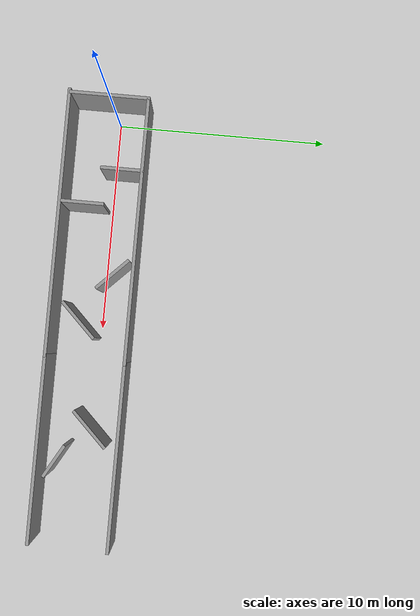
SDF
<sdf version="1.7">
 <world name="default">
  <light name="sun" type="directional">
   <pose>0 0 10 0 -0 0</pose>
   <diffuse>0.8 0.8 0.8 1</diffuse>
   <specular>0.2 0.2 0.2 1</specular>
   <attenuation>
    <range>1000</range>
    <constant>0.9</constant>
    <linear>0.01</linear>
    <quadratic>0.001</quadratic>
   </attenuation>
   <direction>-0.5 0.1 -0.9</direction>
   <spot><inner_angle>0</inner_angle><outer_angle>0</outer_angle><falloff>0</falloff></spot>
  </light>
  <model name="ground_plane">
   <static>1</static>
   <link name="link">
    <collision name="collision">
     <geometry><plane><normal>0 0 1</normal><size>100 100</size></plane></geometry>
     <surface>
      <contact><collide_bitmask>65535</collide_bitmask></contact>
      <friction><ode><mu>100</mu><mu2>50</mu2></ode></friction>
     </surface>
    </collision>
    <visual name="visual">
     <cast_shadows>0</cast_shadows>
     <geometry><plane><normal>0 0 1</normal><size>100 100</size></plane></geometry>
     <material>
      <script><uri>file://media/materials/scripts/gazebo.material</uri><name>Gazebo/Grey</name></script>
     </material>
    </visual>
   </link>
  </model>
  <gravity>0 0 -9.8</gravity>
  <magnetic_field>6e-06 2.3e-05 -4.2e-05</magnetic_field>
  <atmosphere type="adiabatic"/>
  <physics type="ode">
   <max_step_size>0.001</max_step_size>
   <real_time_factor>1</real_time_factor>
   <real_time_update_rate>1000</real_time_update_rate>
  </physics>
  <scene><ambient>0.4 0.4 0.4 1</ambient><background>0.7 0.7 0.7 1</background><shadows>1</shadows></scene>
  <audio><device>default</device></audio>
  <spherical_coordinates>
   <surface_model>EARTH_WGS84</surface_model>
   <latitude_deg>0</latitude_deg>
   <longitude_deg>0</longitude_deg>
   <elevation>0</elevation>
   <heading_deg>0</heading_deg>
  </spherical_coordinates>
  <model name="Untitled">
   <pose>9.67315 -0.392191 0 0 -0 0</pose>
   <link name="Wall_0">
    <collision name="Wall_0_Collision">
     <geometry><box><size>12.5 0.15 2.5</size></box></geometry>
     <pose>0 0 1.25 0 -0 0</pose>
    </collision>
    <visual name="Wall_0_Visual">
     <pose>0 0 1.25 0 -0 0</pose>
     <geometry><box><size>12.5 0.15 2.5</size></box></geometry>
     <material>
      <script><uri>file://media/materials/scripts/gazebo.material</uri><name>Gazebo/Grey</name></script>
      <ambient>1 1 1 1</ambient>
     </material>
     <meta><layer>0</layer></meta>
    </visual>
    <pose>-4.34815 -1.83781 0 0 -0 0</pose>
   </link>
   <link name="Wall_10">
    <collision name="Wall_10_Collision">
     <geometry><box><size>2 0.15 2.5</size></box></geometry>
     <pose>0 0 1.25 0 -0 0</pose>
    </collision>
    <visual name="Wall_10_Visual">
     <pose>0 0 1.25 0 -0 0</pose>
     <geometry><box><size>2 0.15 2.5</size></box></geometry>
     <material>
      <script><uri>file://media/materials/scripts/gazebo.material</uri><name>Gazebo/Grey</name></script>
      <ambient>1 1 1 1</ambient>
     </material>
     <meta><layer>0</layer></meta>
    </visual>
    <pose>-7.04443 0.912809 0 0 -0 -1.5708</pose>
   </link>
   <link name="Wall_12">
    <collision name="Wall_12_Collision">
     <geometry><box><size>2 0.15 2.5</size></box></geometry>
     <pose>0 0 1.25 0 -0 0</pose>
    </collision>
    <visual name="Wall_12_Visual">
     <pose>0 0 1.25 0 -0 0</pose>
     <geometry><box><size>2 0.15 2.5</size></box></geometry>
     <material>
      <script><uri>file://media/materials/scripts/gazebo.material</uri><name>Gazebo/Grey</name></script>
      <ambient>1 1 1 1</ambient>
     </material>
     <meta><layer>0</layer></meta>
    </visual>
    <pose>-5.35322 -0.783274 0 0 -0 1.5708</pose>
   </link>
   <link name="Wall_14">
    <collision name="Wall_14_Collision">
     <geometry><box><size>2 0.15 2.5</size></box></geometry>
     <pose>0 0 1.25 0 -0 0</pose>
    </collision>
    <visual name="Wall_14_Visual">
     <pose>0 0 1.25 0 -0 0</pose>
     <geometry><box><size>2 0.15 2.5</size></box></geometry>
     <material>
      <script><uri>file://media/materials/scripts/gazebo.material</uri><name>Gazebo/Grey</name></script>
      <ambient>1 1 1 1</ambient>
     </material>
     <meta><layer>0</layer></meta>
    </visual>
    <pose>-2.16234 0.91096 0 0 -0 -0.785398</pose>
   </link>
   <link name="Wall_16">
    <collision name="Wall_16_Collision">
     <geometry><box><size>2.25 0.15 2.5</size></box></geometry>
     <pose>0 0 1.25 0 -0 0</pose>
    </collision>
    <visual name="Wall_16_Visual">
     <pose>0 0 1.25 0 -0 0</pose>
     <geometry><box><size>2.25 0.15 2.5</size></box></geometry>
     <material>
      <script><uri>file://media/materials/scripts/gazebo.material</uri><name>Gazebo/Grey</name></script>
      <ambient>1 1 1 1</ambient>
     </material>
     <meta><layer>0</layer></meta>
    </visual>
    <pose>0.080981 -0.474816 0 0 -0 0.785398</pose>
   </link>
   <link name="Wall_18">
    <collision name="Wall_18_Collision">
     <geometry><box><size>8.75 0.15 2.5</size></box></geometry>
     <pose>0 0 1.25 0 -0 0</pose>
    </collision>
    <visual name="Wall_18_Visual">
     <pose>0 0 1.25 0 -0 0</pose>
     <geometry><box><size>8.75 0.15 2.5</size></box></geometry>
     <material>
      <script><uri>file://media/materials/scripts/gazebo.material</uri><name>Gazebo/Grey</name></script>
      <ambient>1 1 1 1</ambient>
     </material>
     <meta><layer>0</layer></meta>
    </visual>
    <pose>6.22315 1.83781 0 0 -0 0</pose>
   </link>
   <link name="Wall_20">
    <collision name="Wall_20_Collision">
     <geometry><box><size>8.75 0.15 2.5</size></box></geometry>
     <pose>0 0 1.25 0 -0 0</pose>
    </collision>
    <visual name="Wall_20_Visual">
     <pose>0 0 1.25 0 -0 0</pose>
     <geometry><box><size>8.75 0.15 2.5</size></box></geometry>
     <material>
      <script><uri>file://media/materials/scripts/gazebo.material</uri><name>Gazebo/Grey</name></script>
      <ambient>1 1 1 1</ambient>
     </material>
     <meta><layer>0</layer></meta>
    </visual>
    <pose>6.12685 -1.83781 0 0 -0 0</pose>
   </link>
   <link name="Wall_22">
    <collision name="Wall_22_Collision">
     <geometry><box><size>2.25 0.15 2.5</size></box></geometry>
     <pose>0 0 1.25 0 -0 0</pose>
    </collision>
    <visual name="Wall_22_Visual">
     <pose>0 0 1.25 0 -0 0</pose>
     <geometry><box><size>2.25 0.15 2.5</size></box></geometry>
     <material>
      <script><uri>file://media/materials/scripts/gazebo.material</uri><name>Gazebo/Grey</name></script>
      <ambient>1 1 1 1</ambient>
     </material>
     <meta><layer>0</layer></meta>
    </visual>
    <pose>5.03356 0.495241 0 0 -0 -2.35619</pose>
   </link>
   <link name="Wall_24">
    <collision name="Wall_24_Collision">
     <geometry><box><size>1.75 0.15 2.5</size></box></geometry>
     <pose>0 0 1.25 0 -0 0</pose>
    </collision>
    <visual name="Wall_24_Visual">
     <pose>0 0 1.25 0 -0 0</pose>
     <geometry><box><size>1.75 0.15 2.5</size></box></geometry>
     <material>
      <script><uri>file://media/materials/scripts/gazebo.material</uri><name>Gazebo/Grey</name></script>
      <ambient>1 1 1 1</ambient>
     </material>
     <meta><layer>0</layer></meta>
    </visual>
    <pose>6.60523 -0.989894 0 0 -0 -0.523599</pose>
   </link>
   <link name="Wall_5">
    <collision name="Wall_5_Collision">
     <geometry><box><size>12.5 0.15 2.5</size></box></geometry>
     <pose>0 0 1.25 0 -0 0</pose>
    </collision>
    <visual name="Wall_5_Visual">
     <pose>0 0 1.25 0 -0 0</pose>
     <geometry><box><size>12.5 0.15 2.5</size></box></geometry>
     <material>
      <script><uri>file://media/materials/scripts/gazebo.material</uri><name>Gazebo/Grey</name></script>
      <ambient>1 1 1 1</ambient>
     </material>
     <meta><layer>0</layer></meta>
    </visual>
    <pose>-4.25185 1.83781 0 0 -0 0</pose>
   </link>
   <link name="Wall_7">
    <collision name="Wall_7_Collision">
     <geometry><box><size>3.75 0.15 2.5</size></box></geometry>
     <pose>0 0 1.25 0 -0 0</pose>
    </collision>
    <visual name="Wall_7_Visual">
     <pose>0 0 1.25 0 -0 0</pose>
     <geometry><box><size>3.75 0.15 2.5</size></box></geometry>
     <material>
      <script><uri>file://media/materials/scripts/gazebo.material</uri><name>Gazebo/Grey</name></script>
      <ambient>1 1 1 1</ambient>
     </material>
     <meta><layer>0</layer></meta>
    </visual>
    <pose>-10.4268 0.037809 0 0 -0 -1.5708</pose>
   </link>
   <static>1</static>
  </model>
 </world>
</sdf>
